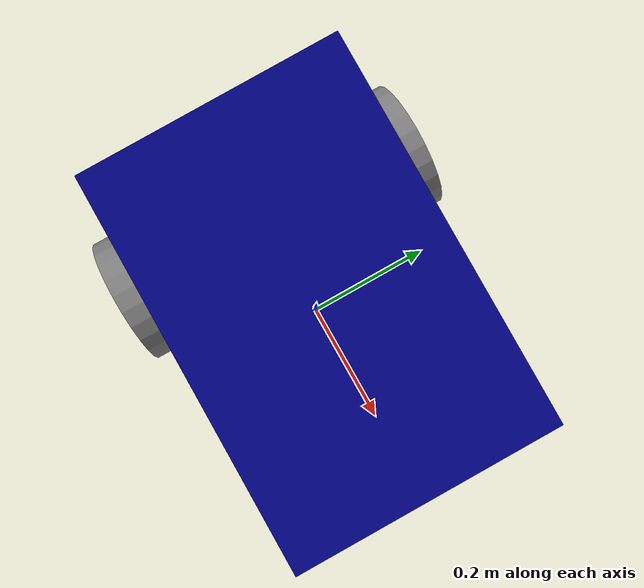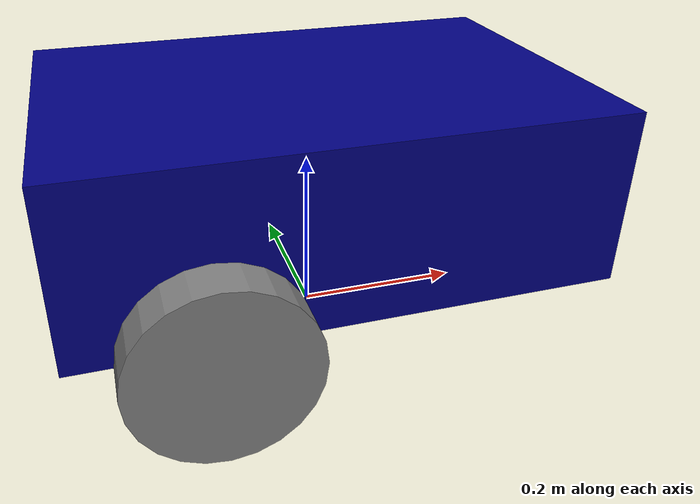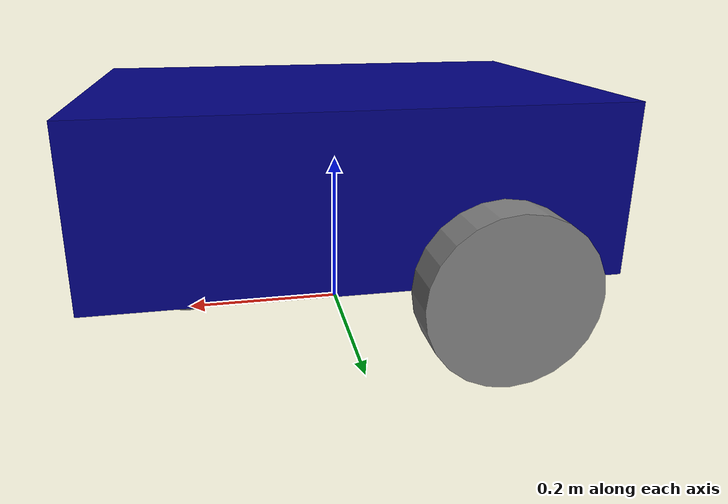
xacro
<?xml version="1.0"?>
<robot name="my_robot" xmlns:xacro="http://www.ros.org/wiki/xacro">

    <xacro:include filename="common_properties.xacro" />
    <xacro:include filename="mobile_base.xacro" />
    <xacro:include filename="mobile_base_gazebo.xacro" />
    <xacro:include filename="camera.xacro" />
</robot>

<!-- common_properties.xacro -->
<robot xmlns:xacro="http://www.ros.org/wiki/xacro">

    <material name="blue">
        <color rgba="0 0 0.5 1" />
    </material>

    <material name="grey">
        <color rgba="0.5 0.5 0.5 1" />
    </material>

    <xacro:macro name="box_intertia" params="m l w h xyz rpy">
        <inertial>
            <origin xyz="${xyz}" rpy="${rpy}" />
            <mass value="${m}" />
            <inertia ixx="${(m / 12.0) * (l * l + h * h)}" ixy="0" ixz="0" iyy="${(m / 12.0) * (w * w + l * l)}" iyz="0" izz="${(m / 12.0) * (h * h + w * w)}" />
        </inertial>
    </xacro:macro>

    <xacro:macro name="cylinder_inertia" params="m r l xyz rpy">
        <inertial>
            <origin xyz="${xyz}" rpy="${rpy}" />
            <mass value="${m}" />
            <inertia ixx="${(m / 12.0) * (3 * r * r + l * l)}" ixy="0" ixz="0" iyy="${(m / 12.0) * (3 * r * r + l * l)}" iyz="0" izz="${(m / 2.0) * r * r}" />
        </inertial>
    </xacro:macro>

    <xacro:macro name="sphere_inertia" params="m r xyz rpy">
        <inertial>
            <origin xyz="${xyz}" rpy="${rpy}" />
            <mass value="${m}" />
            <inertia ixx="${(2.0 / 5.0) * m * r * r}" ixy="0" ixz="0" iyy="${(2.0 / 5.0) * m * r * r}" iyz="0" izz="${(2.0 / 5.0) * m * r * r}" />
        </inertial>
    </xacro:macro>

</robot>

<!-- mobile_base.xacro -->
<robot xmlns:xacro="http://www.ros.org/wiki/xacro">

    <xacro:property name="base_length" value="0.6" />
    <xacro:property name="base_width" value="0.4" />
    <xacro:property name="base_height" value="0.2" />
    <xacro:property name="wheel_radius" value="0.1" />
    <xacro:property name="wheel_length" value="0.05" />

    <link name="base_footprint" />

    <link name="base_link">
        <visual>
            <geometry>
                <box size="${base_length} ${base_width} ${base_height}" />
            </geometry>
            <origin xyz="0 0 ${base_height / 2.0}" rpy="0 0 0" />
            <material name="blue" />
        </visual>
        <xacro:box_intertia m="5.0" l="${2*base_length}" w="${2*base_width}" h="${2*base_height}" xyz="0 0 ${base_height / 2.0}" rpy="0 0 0" />
        <collision>
            <geometry>
                <box size="${base_length} ${base_width} ${base_height}" />
            </geometry>
             <origin xyz="0 0 ${base_height / 2.0}" rpy="0 0 0" />
        </collision>
    </link>

    <xacro:macro name="wheel_link" params="prefix">
        <link name="${prefix}_wheel_link">
            <visual>
                <geometry>
                    <cylinder radius="${wheel_radius}" length="${wheel_length}" />
                </geometry>
                <origin xyz="0 0 0" rpy="${pi / 2.0} 0 0" />
                <material name="grey" />
            </visual>
            <collision>
            <geometry>
                    <cylinder radius="${wheel_radius}" length="${wheel_length}" />
            </geometry>
            <origin xyz="0 0 0" rpy="${pi / 2.0} 0 0" />
            </collision>
            <xacro:cylinder_inertia m="3.0" r="${wheel_radius}" l="${2*wheel_length}" xyz="0 0 0" rpy="${pi / 2.0} 0 0" />
        </link>
    </xacro:macro>

    <xacro:wheel_link prefix="right" />
    <xacro:wheel_link prefix="left" />

    <link name="caster_wheel_link">
        <visual>
            <geometry>
                <sphere radius="${wheel_radius / 2.0}" />
            </geometry>
            <origin xyz="0 0 0" rpy="0 0 0" />
            <material name="grey" />
        </visual>
        <collision>
            <geometry>
                <sphere radius="${wheel_radius / 2.0}" />
            </geometry>
             <origin xyz="0 0 0" rpy="0 0 0" />
        </collision>

        <xacro:sphere_inertia m="0.5" r="${wheel_radius / 2.0}" xyz="0 0 0" rpy="0 0 0" />
    </link>

    <joint name="base_joint" type="fixed">
        <parent link="base_footprint" />
        <child link="base_link" />
        <origin xyz="0 0 ${wheel_radius}" rpy="0 0 0"/>
    </joint>

    <joint name="base_right_wheel_joint" type="continuous">
        <parent link="base_link" />
        <child link="right_wheel_link" />
        <origin xyz="${-base_length / 4.0} ${-(base_width + wheel_length) / 2.0} 0" rpy="0 0 0" />
        <axis xyz="0 1 0" />
    </joint>

    <joint name="base_left_wheel_joint" type="continuous">
        <parent link="base_link" />
        <child link="left_wheel_link" />
        <origin xyz="${-base_length / 4.0} ${(base_width + wheel_length) / 2.0} 0" rpy="0 0 0" />
        <axis xyz="0 1 0" />
    </joint>

    <joint name="base_caster_wheel_joint" type="fixed">
        <parent link="base_link" />
        <child link="caster_wheel_link" />
        <origin xyz="${base_length / 3.0} 0 ${-wheel_radius / 2.0}" rpy="0 0 0" />
    </joint>

</robot>

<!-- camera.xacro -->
<robot xmlns:xacro="http://www.ros.org/wiki/xacro">

    <xacro:property name="cl" value="0.1"/>
    <xacro:property name="cw" value="0.1"/>
    <xacro:property name="ch" value="0.05"/>

    <material name="camera_material">
        <color rgba="0.0 1.0 1.0 1.0"/>
    </material>

    <link name="camera_link">
        <visual>
            <geometry>
                <box size="${cl} ${cw} ${ch}"/>
            </geometry>
            <material name="camera_material"/>

        </visual>
        <collision>
            <geometry>
                <box size="${cl} ${cw} ${ch}"/>
            </geometry>
        </collision>
        <xacro:box_intertia m="0.1" l="${cl}" w="${cw}" h="${ch}" xyz="0 0 0" rpy="0 0 0"/>
    </link>

    <joint name="base_camera_joint" type="fixed">
        <origin xyz="0.0 0 0.05" rpy="0.0 1.57 0.0"/>
        <parent link="base_link"/>
        <child link="camera_link"/>
    </joint>

    <link name="camera_link_optical">
    </link>

    <joint name="camera_optical_joint" type="fixed">
        <origin xyz="0 0 0" rpy="${-pi/2} 0 ${-pi/2}"/>
        <parent link="camera_link"/>
        <child link="camera_link_optical"/>
    </joint>

    <gazebo reference="camera_link">
        <material>Gazebo/Red</material>
        <sensor name="camera_sensor" type="camera">
            <pose>0 0 0 0 0 0</pose>
            <visualize>true</visualize>
            <update_rate>10.0</update_rate>
            <camera name="camera">

            <image>
                <width>640</width>
                <height>480</height>
                <format>R8G8B8</format>
            </image>
            <clip>
                <near>0.05</near>
                <far>8</far>
            </clip>
            </camera>
            <plugin name="camera_controller" filename="libgazebo_ros_camera.so">
                <cameraName>camera</cameraName>
                <frame_name>camera_link_optical</frame_name>
            </plugin>

        </sensor>
    </gazebo>

</robot>
